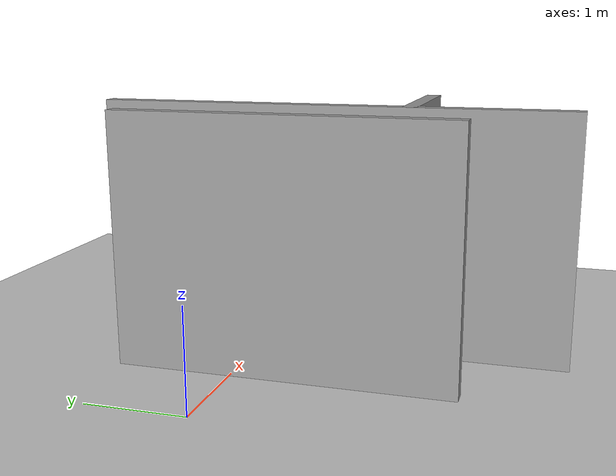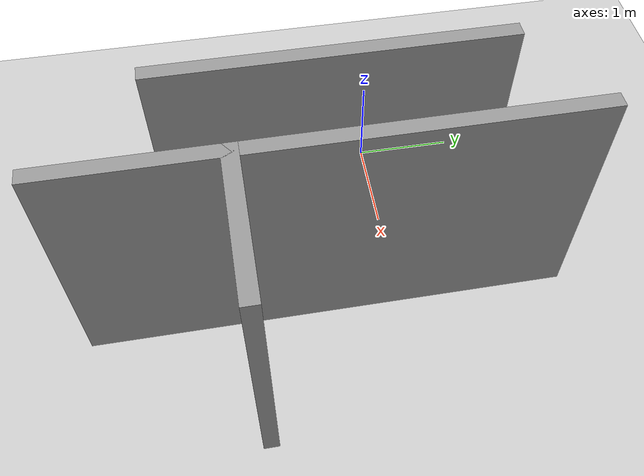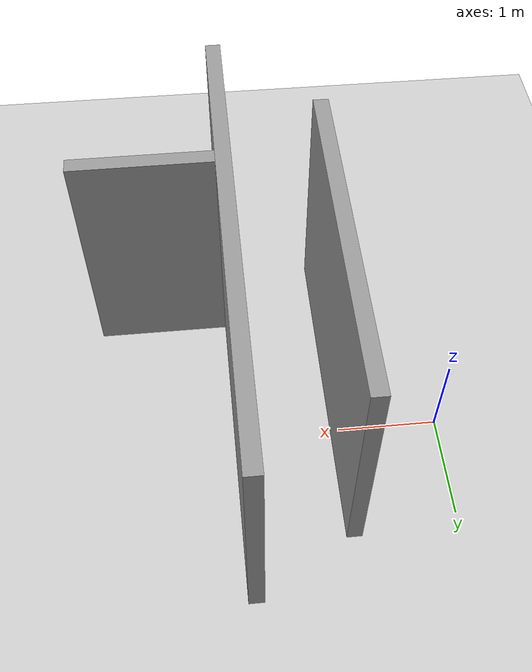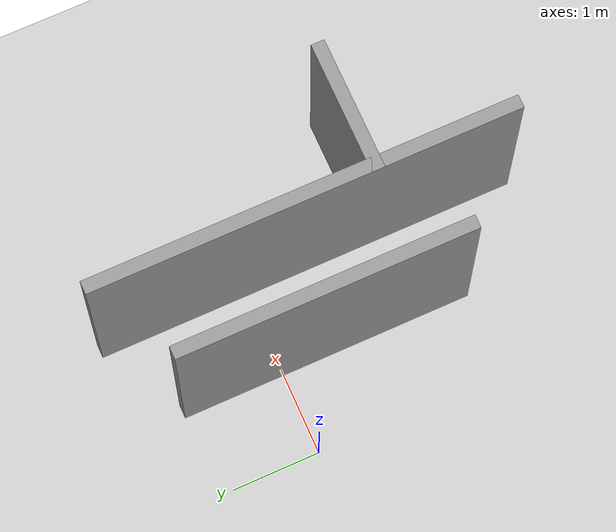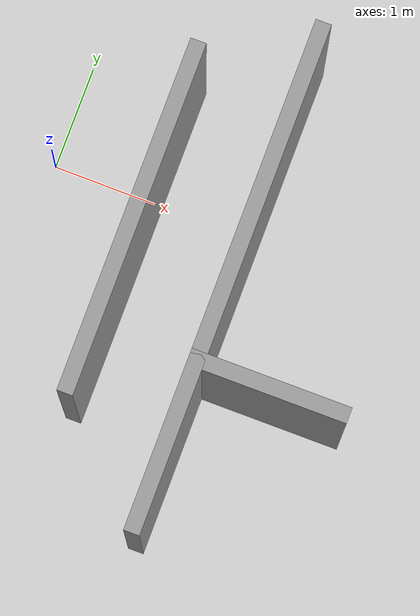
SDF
<sdf version="1.7">
 <world name="default">
  <light name="sun" type="directional">
   <pose>0 0 10 0 -0 0</pose>
   <diffuse>0.8 0.8 0.8 1</diffuse>
   <specular>0.2 0.2 0.2 1</specular>
   <attenuation>
    <range>1000</range>
    <constant>0.9</constant>
    <linear>0.01</linear>
    <quadratic>0.001</quadratic>
   </attenuation>
   <direction>-0.5 0.1 -0.9</direction>
   <spot><inner_angle>0</inner_angle><outer_angle>0</outer_angle><falloff>0</falloff></spot>
  </light>
  <model name="ground_plane">
   <static>1</static>
   <link name="link">
    <collision name="collision">
     <geometry><plane><normal>0 0 1</normal><size>100 100</size></plane></geometry>
     <surface>
      <contact><collide_bitmask>65535</collide_bitmask></contact>
      <friction><ode><mu>100</mu><mu2>50</mu2></ode></friction>
     </surface>
    </collision>
    <visual name="visual">
     <cast_shadows>0</cast_shadows>
     <geometry><plane><normal>0 0 1</normal><size>100 100</size></plane></geometry>
     <material>
      <script><uri>file://media/materials/scripts/gazebo.material</uri><name>Gazebo/Grey</name></script>
     </material>
    </visual>
   </link>
  </model>
  <gravity>0 0 -9.8</gravity>
  <magnetic_field>6e-06 2.3e-05 -4.2e-05</magnetic_field>
  <atmosphere type="adiabatic"/>
  <physics type="ode">
   <max_step_size>0.001</max_step_size>
   <real_time_factor>1</real_time_factor>
   <real_time_update_rate>1000</real_time_update_rate>
  </physics>
  <scene><ambient>0.4 0.4 0.4 1</ambient><background>0.7 0.7 0.7 1</background><shadows>1</shadows></scene>
  <spherical_coordinates>
   <surface_model>EARTH_WGS84</surface_model>
   <latitude_deg>0</latitude_deg>
   <longitude_deg>0</longitude_deg>
   <elevation>0</elevation>
   <heading_deg>0</heading_deg>
  </spherical_coordinates>
  <model name="test_goal">
   <link name="Wall_0">
    <pose>-0.072469 -1.16421 0 0 -0 0</pose>
    <inertial>
     <inertia><ixx>0</ixx><ixy>0</ixy><ixz>0</ixz><iyy>0</iyy><iyz>0</iyz><izz>0</izz></inertia>
     <mass>0</mass>
    </inertial>
    <visual name="Wall_0_Visual">
     <pose>0 0 1.25 0 -0 0</pose>
     <geometry><box><size>3.34526 0.15 2.5</size></box></geometry>
     <material>
      <script><uri>file://media/materials/scripts/gazebo.material</uri><name>Gazebo/Grey</name></script>
      <ambient>1 1 1 1</ambient>
      <shader type="pixel"/>
     </material>
     <meta><layer>0</layer></meta>
    </visual>
    <collision name="Wall_0_Collision">
     <pose>0 0 1.25 0 -0 0</pose>
     <geometry><box><size>3.34526 0.15 2.5</size></box></geometry>
     <surface>
      <friction>
       <ode><mu>1</mu><mu2>1</mu2><fdir1>0 0 0</fdir1><slip1>0</slip1><slip2>0</slip2></ode>
       <torsional>
        <coefficient>1</coefficient>
        <patch_radius>0</patch_radius>
        <surface_radius>0</surface_radius>
        <use_patch_radius>1</use_patch_radius>
        <ode><slip>0</slip></ode>
       </torsional>
      </friction>
      <bounce><restitution_coefficient>0</restitution_coefficient><threshold>1e+06</threshold></bounce>
      <contact>
       <collide_without_contact>0</collide_without_contact>
       <collide_without_contact_bitmask>1</collide_without_contact_bitmask>
       <collide_bitmask>1</collide_bitmask>
       <ode>
        <soft_cfm>0</soft_cfm>
        <soft_erp>0.2</soft_erp>
        <kp>1e+13</kp>
        <kd>1</kd>
        <max_vel>0.01</max_vel>
        <min_depth>0</min_depth>
       </ode>
       <bullet>
        <split_impulse>1</split_impulse>
        <split_impulse_penetration_threshold>-0.01</split_impulse_penetration_threshold>
        <soft_cfm>0</soft_cfm>
        <soft_erp>0.2</soft_erp>
        <kp>1e+13</kp>
        <kd>1</kd>
       </bullet>
      </contact>
     </surface>
    </collision>
   </link>
   <link name="Wall_2">
    <pose>0.915123 0.490001 0 0 0 -1.5708</pose>
    <visual name="Wall_2_Visual">
     <pose>0 0 1.25 0 -0 0</pose>
     <geometry><box><size>1.5 0.15 2.5</size></box></geometry>
     <material>
      <script><uri>file://media/materials/scripts/gazebo.material</uri><name>Gazebo/Grey</name></script>
      <ambient>1 1 1 1</ambient>
      <shader type="pixel"/>
     </material>
     <meta><layer>0</layer></meta>
    </visual>
    <collision name="Wall_2_Collision">
     <pose>0 0 1.25 0 -0 0</pose>
     <geometry><box><size>1.5 0.15 2.5</size></box></geometry>
     <surface>
      <friction>
       <ode><mu>1</mu><mu2>1</mu2><fdir1>0 0 0</fdir1><slip1>0</slip1><slip2>0</slip2></ode>
       <torsional>
        <coefficient>1</coefficient>
        <patch_radius>0</patch_radius>
        <surface_radius>0</surface_radius>
        <use_patch_radius>1</use_patch_radius>
        <ode><slip>0</slip></ode>
       </torsional>
      </friction>
      <bounce><restitution_coefficient>0</restitution_coefficient><threshold>1e+06</threshold></bounce>
      <contact>
       <collide_without_contact>0</collide_without_contact>
       <collide_without_contact_bitmask>1</collide_without_contact_bitmask>
       <collide_bitmask>1</collide_bitmask>
       <ode>
        <soft_cfm>0</soft_cfm>
        <soft_erp>0.2</soft_erp>
        <kp>1e+13</kp>
        <kd>1</kd>
        <max_vel>0.01</max_vel>
        <min_depth>0</min_depth>
       </ode>
       <bullet>
        <split_impulse>1</split_impulse>
        <split_impulse_penetration_threshold>-0.01</split_impulse_penetration_threshold>
        <soft_cfm>0</soft_cfm>
        <soft_erp>0.2</soft_erp>
        <kp>1e+13</kp>
        <kd>1</kd>
       </bullet>
      </contact>
     </surface>
    </collision>
   </link>
   <link name="Wall_3">
    <pose>0.12522 -0.184999 0 0 -0 3.14159</pose>
    <inertial>
     <inertia><ixx>0</ixx><ixy>0</ixy><ixz>0</ixz><iyy>0</iyy><iyz>0</iyz><izz>0</izz></inertia>
     <mass>0</mass>
    </inertial>
    <visual name="Wall_3_Visual">
     <pose>0 0 1.25 0 -0 0</pose>
     <geometry><box><size>4.83235 0.15 2.5</size></box></geometry>
     <material>
      <script><uri>file://media/materials/scripts/gazebo.material</uri><name>Gazebo/Grey</name></script>
      <ambient>1 1 1 1</ambient>
      <shader type="pixel"/>
     </material>
     <meta><layer>0</layer></meta>
    </visual>
    <collision name="Wall_3_Collision">
     <pose>0 0 1.25 0 -0 0</pose>
     <geometry><box><size>4.83235 0.15 2.5</size></box></geometry>
     <surface>
      <friction>
       <ode><mu>1</mu><mu2>1</mu2><fdir1>0 0 0</fdir1><slip1>0</slip1><slip2>0</slip2></ode>
       <torsional>
        <coefficient>1</coefficient>
        <patch_radius>0</patch_radius>
        <surface_radius>0</surface_radius>
        <use_patch_radius>1</use_patch_radius>
        <ode><slip>0</slip></ode>
       </torsional>
      </friction>
      <bounce><restitution_coefficient>0</restitution_coefficient><threshold>1e+06</threshold></bounce>
      <contact>
       <collide_without_contact>0</collide_without_contact>
       <collide_without_contact_bitmask>1</collide_without_contact_bitmask>
       <collide_bitmask>1</collide_bitmask>
       <ode>
        <soft_cfm>0</soft_cfm>
        <soft_erp>0.2</soft_erp>
        <kp>1e+13</kp>
        <kd>1</kd>
        <max_vel>0.01</max_vel>
        <min_depth>0</min_depth>
       </ode>
       <bullet>
        <split_impulse>1</split_impulse>
        <split_impulse_penetration_threshold>-0.01</split_impulse_penetration_threshold>
        <soft_cfm>0</soft_cfm>
        <soft_erp>0.2</soft_erp>
        <kp>1e+13</kp>
        <kd>1</kd>
       </bullet>
      </contact>
     </surface>
    </collision>
   </link>
   <static>1</static>
   <pose>2.17755 -0.586377 0 0 0 -1.56794</pose>
  </model>
 </world>
</sdf>
